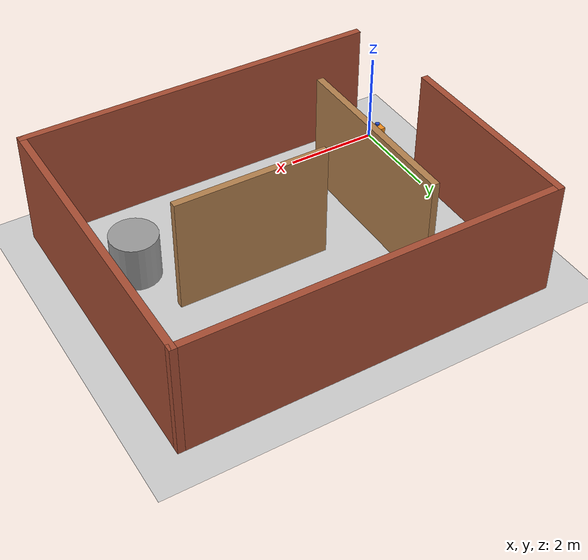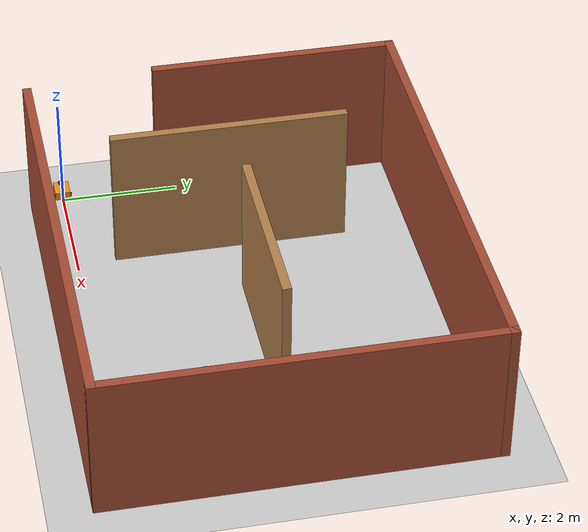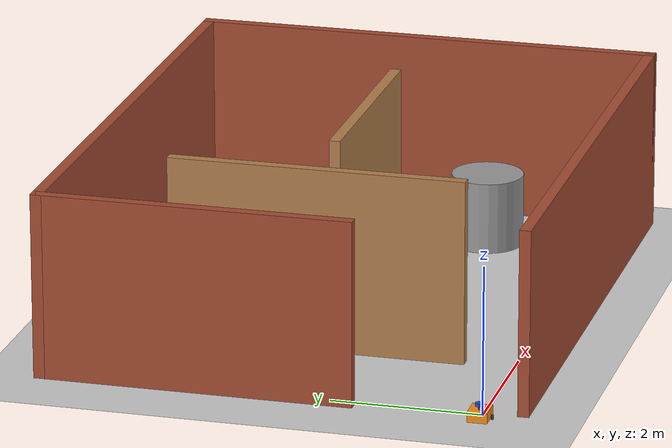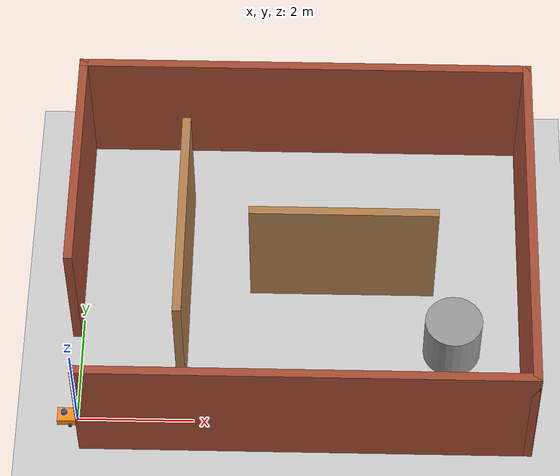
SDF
<sdf version="1.7">
 <world name="default">
  <light name="sun" type="directional">
   <pose>0 0 10 0 -0 0</pose>
   <diffuse>0.8 0.8 0.8 1</diffuse>
   <specular>0.2 0.2 0.2 1</specular>
   <attenuation>
    <range>1000</range>
    <constant>0.9</constant>
    <linear>0.01</linear>
    <quadratic>0.001</quadratic>
   </attenuation>
   <direction>-0.5 0.1 -0.9</direction>
   <spot><inner_angle>0</inner_angle><outer_angle>0</outer_angle><falloff>0</falloff></spot>
  </light>
  <model name="ground_plane">
   <static>1</static>
   <link name="link">
    <collision name="collision">
     <geometry><plane><normal>0 0 1</normal><size>100 100</size></plane></geometry>
     <surface><friction><ode><mu>100</mu><mu2>50</mu2></ode></friction></surface>
    </collision>
    <visual name="visual">
     <cast_shadows>0</cast_shadows>
     <geometry><plane><normal>0 0 1</normal><size>100 100</size></plane></geometry>
     <material>
      <script><uri>file://media/materials/scripts/gazebo.material</uri><name>Gazebo/Grey</name></script>
     </material>
    </visual>
   </link>
  </model>
  <gravity>0 0 -9.8</gravity>
  <magnetic_field>6e-06 2.3e-05 -4.2e-05</magnetic_field>
  <atmosphere type="adiabatic"/>
  <physics type="ode">
   <max_step_size>0.001</max_step_size>
   <real_time_factor>1</real_time_factor>
   <real_time_update_rate>1000</real_time_update_rate>
  </physics>
  <scene><ambient>0.4 0.4 0.4 1</ambient><background>0.7 0.7 0.7 1</background><shadows>1</shadows></scene>
  <audio><device>default</device></audio>
  <spherical_coordinates>
   <surface_model>EARTH_WGS84</surface_model>
   <latitude_deg>0</latitude_deg>
   <longitude_deg>0</longitude_deg>
   <elevation>0</elevation>
   <heading_deg>0</heading_deg>
  </spherical_coordinates>
  <model name="maze">
   <pose>3.81404 2.66883 0 0 -0 0</pose>
   <link name="Wall_12">
    <collision name="Wall_12_Collision">
     <geometry><box><size>4 0.15 2.5</size></box></geometry>
     <pose>0 0 1.25 0 -0 0</pose>
    </collision>
    <visual name="Wall_12_Visual">
     <pose>0 0 1.25 0 -0 0</pose>
     <geometry><box><size>4 0.15 2.5</size></box></geometry>
     <material>
      <script><uri>file://media/materials/scripts/gazebo.material</uri><name>Gazebo/Wood</name></script>
      <ambient>1 1 1 1</ambient>
     </material>
     <meta><layer>0</layer></meta>
    </visual>
    <pose>-2.04628 -0.00806 0 0 -0 -1.5708</pose>
   </link>
   <link name="Wall_2">
    <collision name="Wall_2_Collision">
     <geometry><box><size>7.75 0.15 2.5</size></box></geometry>
     <pose>0 0 1.25 0 -0 0</pose>
    </collision>
    <visual name="Wall_2_Visual">
     <pose>0 0 1.25 0 -0 0</pose>
     <geometry><box><size>7.75 0.15 2.5</size></box></geometry>
     <material>
      <script><uri>file://media/materials/scripts/gazebo.material</uri><name>Gazebo/Bricks</name></script>
      <ambient>1 1 1 1</ambient>
     </material>
     <meta><layer>0</layer></meta>
    </visual>
    <pose>0.125 -3.175 0 0 -0 0</pose>
   </link>
   <link name="Wall_3">
    <collision name="Wall_3_Collision">
     <geometry><box><size>6.5 0.15 2.5</size></box></geometry>
     <pose>0 0 1.25 0 -0 0</pose>
    </collision>
    <visual name="Wall_3_Visual">
     <pose>0 0 1.25 0 -0 0</pose>
     <geometry><box><size>6.5 0.15 2.5</size></box></geometry>
     <material>
      <script><uri>file://media/materials/scripts/gazebo.material</uri><name>Gazebo/Bricks</name></script>
      <ambient>1 1 1 1</ambient>
     </material>
     <meta><layer>0</layer></meta>
    </visual>
    <pose>3.925 -0 0 0 -0 1.5708</pose>
   </link>
   <link name="Wall_4">
    <collision name="Wall_4_Collision">
     <geometry><box><size>8 0.15 2.5</size></box></geometry>
     <pose>0 0 1.25 0 -0 0</pose>
    </collision>
    <visual name="Wall_4_Visual">
     <pose>0 0 1.25 0 -0 0</pose>
     <geometry><box><size>8 0.15 2.5</size></box></geometry>
     <material>
      <script><uri>file://media/materials/scripts/gazebo.material</uri><name>Gazebo/Bricks</name></script>
      <ambient>1 1 1 1</ambient>
     </material>
     <meta><layer>0</layer></meta>
    </visual>
    <pose>0 3.175 0 0 -0 3.14159</pose>
   </link>
   <link name="Wall_5">
    <collision name="Wall_5_Collision">
     <geometry><box><size>4.25 0.15 2.5</size></box></geometry>
     <pose>0 0 1.25 0 -0 0</pose>
    </collision>
    <visual name="Wall_5_Visual">
     <pose>0 0 1.25 0 -0 0</pose>
     <geometry><box><size>4.25 0.15 2.5</size></box></geometry>
     <material>
      <script><uri>file://media/materials/scripts/gazebo.material</uri><name>Gazebo/Bricks</name></script>
      <ambient>1 1 1 1</ambient>
     </material>
     <meta><layer>0</layer></meta>
    </visual>
    <pose>-3.925 1.125 0 0 -0 -1.5708</pose>
   </link>
   <link name="Wall_7">
    <collision name="Wall_7_Collision">
     <geometry><box><size>3.25 0.15 2.5</size></box></geometry>
     <pose>0 0 1.25 0 -0 0</pose>
    </collision>
    <visual name="Wall_7_Visual">
     <pose>0 0 1.25 0 -0 0</pose>
     <geometry><box><size>3.25 0.15 2.5</size></box></geometry>
     <material>
      <script><uri>file://media/materials/scripts/gazebo.material</uri><name>Gazebo/Wood</name></script>
      <ambient>1 1 1 1</ambient>
     </material>
     <meta><layer>0</layer></meta>
    </visual>
    <pose>0.719571 0.055437 0 0 -0 0</pose>
   </link>
   <static>1</static>
  </model>
  <model name="unit_cylinder">
   <pose>6.46679 1.48993 0.499993 -3e-06 -4e-06 -0</pose>
   <link name="link">
    <inertial>
     <mass>1</mass>
     <inertia><ixx>0.145833</ixx><ixy>0</ixy><ixz>0</ixz><iyy>0.145833</iyy><iyz>0</iyz><izz>0.125</izz></inertia>
    </inertial>
    <collision name="collision">
     <geometry><cylinder><radius>0.5</radius><length>1</length></cylinder></geometry>
    </collision>
    <visual name="visual">
     <geometry><cylinder><radius>0.5</radius><length>1</length></cylinder></geometry>
     <material>
      <script><name>Gazebo/Grey</name><uri>file://media/materials/scripts/gazebo.material</uri></script>
     </material>
    </visual>
   </link>
  </model>
  <model name="rover">
   <link name="base_link">
    <inertial>
     <pose>-0.067475 0 0.081098 0 -0 0</pose>
     <mass>0.61</mass>
     <inertia>
      <ixx>0.00561003</ixx>
      <ixy>0</ixy>
      <ixz>0.000453811</ixz>
      <iyy>0.00760348</iyy>
      <iyz>0</iyz>
      <izz>0.00797093</izz>
     </inertia>
    </inertial>
    <collision name="base_link_fixed_joint_lump__chassis_collision">
     <pose>-0.0585 0 0.059 0 -0 0</pose>
     <geometry><box><size>0.335 0.265 0.138</size></box></geometry>
    </collision>
    <collision name="base_link_fixed_joint_lump__caster_wheel_collision_1">
     <pose>-0.151 0 -0.023 0 -0 0</pose>
     <geometry><sphere><radius>0.01</radius></sphere></geometry>
     <surface><friction><ode><mu>0.001</mu><mu2>0.001</mu2></ode></friction></surface>
    </collision>
    <collision name="base_link_fixed_joint_lump__laser_frame_collision_2">
     <pose>-0.104 0 0.202 0 -0 0</pose>
     <geometry><cylinder><length>0.04</length><radius>0.05</radius></cylinder></geometry>
    </collision>
    <visual name="base_link_fixed_joint_lump__chassis_visual">
     <pose>-0.0585 0 0.059 0 -0 0</pose>
     <geometry><box><size>0.335 0.265 0.138</size></box></geometry>
     <material>
      <script><name>Gazebo/Orange</name><uri>file://media/materials/scripts/gazebo.material</uri></script>
     </material>
    </visual>
    <visual name="base_link_fixed_joint_lump__caster_wheel_visual_1">
     <pose>-0.151 0 -0.023 0 -0 0</pose>
     <geometry><sphere><radius>0.01</radius></sphere></geometry>
     <material>
      <script><name>Gazebo/White</name><uri>file://media/materials/scripts/gazebo.material</uri></script>
     </material>
    </visual>
    <visual name="base_link_fixed_joint_lump__laser_frame_visual_2">
     <pose>-0.104 0 0.202 0 -0 0</pose>
     <geometry><cylinder><length>0.04</length><radius>0.05</radius></cylinder></geometry>
     <material>
      <script><name>Gazebo/Blue</name><uri>file://media/materials/scripts/gazebo.material</uri></script>
     </material>
    </visual>
    <visual name="base_link_fixed_joint_lump__laser_frame_visual_3">
     <pose>-0.104 0 0.152 0 -0 0</pose>
     <geometry><cylinder><length>0.1</length><radius>0.01</radius></cylinder></geometry>
     <material>
      <script><name>Gazebo/Blue</name><uri>file://media/materials/scripts/gazebo.material</uri></script>
     </material>
    </visual>
    <sensor name="laser" type="ray">
     <visualize>1</visualize>
     <update_rate>10</update_rate>
     <ray>
      <scan>
       <horizontal>
        <samples>360</samples>
        <min_angle>-3.14</min_angle>
        <max_angle>3.14</max_angle>
        <resolution>1</resolution>
       </horizontal>
       <vertical><samples>1</samples><min_angle>0</min_angle><max_angle>0</max_angle></vertical>
      </scan>
      <range><min>0.3</min><max>12</max></range>
     </ray>
     <plugin name="laser_controller" filename="libgazebo_ros_ray_sensor.so">
      <ros><remapping>~/out:=scan</remapping></ros>
      <output_type>sensor_msgs/LaserScan</output_type>
      <frame_name>laser_frame</frame_name>
     </plugin>
     <pose>-0.104 0 0.202 0 -0 0</pose>
    </sensor>
   </link>
   <joint name="left_wheel_joint" type="revolute">
    <pose relative_to="base_link">0 0.1485 0 -1.5708 0 0</pose>
    <parent>base_link</parent>
    <child>left_wheel</child>
    <axis>
     <xyz>0 0 1</xyz>
     <limit><lower>-1e+16</lower><upper>1e+16</upper></limit>
     <dynamics><spring_reference>0</spring_reference><spring_stiffness>0</spring_stiffness></dynamics>
    </axis>
   </joint>
   <link name="left_wheel">
    <pose relative_to="left_wheel_joint">0 0 0 0 -0 0</pose>
    <inertial>
     <mass>0.05</mass>
     <inertia>
      <ixx>1.64292e-05</ixx>
      <ixy>0</ixy>
      <ixz>0</ixz>
      <iyy>1.64292e-05</iyy>
      <iyz>0</iyz>
      <izz>2.7225e-05</izz>
     </inertia>
    </inertial>
    <collision name="left_wheel_collision">
     <geometry><sphere><radius>0.033</radius></sphere></geometry>
    </collision>
    <visual name="left_wheel_visual">
     <geometry><cylinder><length>0.026</length><radius>0.033</radius></cylinder></geometry>
     <material>
      <script><name>Gazebo/Black</name><uri>file://media/materials/scripts/gazebo.material</uri></script>
     </material>
    </visual>
   </link>
   <joint name="right_wheel_joint" type="revolute">
    <pose relative_to="base_link">0 -0.1485 0 1.5708 -0 0</pose>
    <parent>base_link</parent>
    <child>right_wheel</child>
    <axis>
     <xyz>0 0 -1</xyz>
     <limit><lower>-1e+16</lower><upper>1e+16</upper></limit>
     <dynamics><spring_reference>0</spring_reference><spring_stiffness>0</spring_stiffness></dynamics>
    </axis>
   </joint>
   <link name="right_wheel">
    <pose relative_to="right_wheel_joint">0 0 0 0 -0 0</pose>
    <inertial>
     <mass>0.05</mass>
     <inertia>
      <ixx>1.64292e-05</ixx>
      <ixy>0</ixy>
      <ixz>0</ixz>
      <iyy>1.64292e-05</iyy>
      <iyz>0</iyz>
      <izz>2.7225e-05</izz>
     </inertia>
    </inertial>
    <collision name="right_wheel_collision">
     <geometry><sphere><radius>0.033</radius></sphere></geometry>
    </collision>
    <visual name="right_wheel_visual">
     <geometry><cylinder><length>0.026</length><radius>0.033</radius></cylinder></geometry>
     <material>
      <script><name>Gazebo/Black</name><uri>file://media/materials/scripts/gazebo.material</uri></script>
     </material>
    </visual>
   </link>
   <static>0</static>
   <plugin name="diff_drive" filename="libgazebo_ros_diff_drive.so">
    <left_joint>left_wheel_joint</left_joint>
    <right_joint>right_wheel_joint</right_joint>
    <wheel_separation>0.297</wheel_separation>
    <wheel_diameter>0.066</wheel_diameter>
    <max_wheel_torque>200</max_wheel_torque>
    <max_wheel_acceleration>10.0</max_wheel_acceleration>
    <odometry_frame>odom</odometry_frame>
    <robot_base_frame>base_link</robot_base_frame>
    <publish_odom>1</publish_odom>
    <publish_odom_tf>1</publish_odom_tf>
    <publish_wheel_tf>1</publish_wheel_tf>
   </plugin>
   <pose>-0.116097 0.000427 0.033 0 -2.8e-05 0.001559</pose>
  </model>
 </world>
</sdf>
